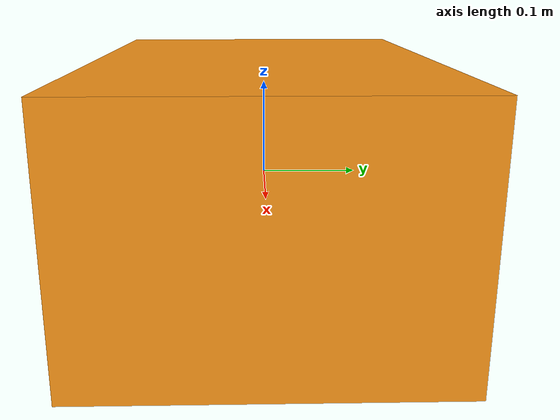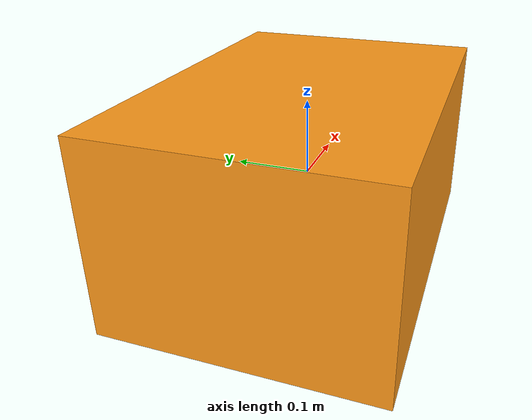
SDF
<?xml version="1.0" ?>
<sdf version="1.9">
  <model name="auv">
    <link name="base_link">
      <pose>0 0 0 0 0 0</pose>
      <inertial>
        <pose>0 0 -0.11 0 0 0</pose>
        <mass>44.6</mass>
        <inertia>
          <ixx>0.6876</ixx>
          <iyy>1.1615</iyy>
          <izz>1.3846</izz>
          <ixy>0</ixy><ixz>0</ixz><iyz>0</iyz>
        </inertia>
      </inertial>
      <collision name="hull_collision">
        <geometry>
          <box>
            <size>0.5 0.35 0.25</size>
          </box>
        </geometry>
      </collision>
      <visual name="hull_visual">
        <geometry>
          <box>
            <size>0.5 0.35 0.25</size>
          </box>
        </geometry>
        <material>
          <ambient>0.9 0.5 0.05 1</ambient>
          <diffuse>1.0 0.6 0.1 1</diffuse>
          <specular>0.3 0.3 0.3 1</specular>
        </material>
      </visual>

      <sensor name="front_camera" type="camera">
        <pose>0.26 0 0 0 0 0</pose>
        <topic>__AUV_NAME__/camera</topic>
        <update_rate>15</update_rate>
        <always_on>1</always_on>
        <visualize>true</visualize>
        <camera>
          <horizontal_fov>1.5708</horizontal_fov>
          <image>
            <width>640</width>
            <height>480</height>
          </image>
          <clip>
            <near>0.05</near>
            <far>50</far>
          </clip>
        </camera>
      </sensor>

      <sensor name="fls_sonar" type="gpu_lidar">
        <pose>0.26 0 -0.04 0 0 0</pose>
        <topic>__AUV_NAME__/sonar</topic>
        <update_rate>10</update_rate>
        <always_on>1</always_on>
        <visualize>false</visualize>
        <lidar>
          <scan>
            <horizontal>
              <samples>64</samples>
              <resolution>1</resolution>
              <min_angle>-1.0472</min_angle>
              <max_angle>1.0472</max_angle>
            </horizontal>
            <vertical>
              <samples>4</samples>
              <resolution>1</resolution>
              <min_angle>-0.1745</min_angle>
              <max_angle>0.1745</max_angle>
            </vertical>
          </scan>
          <range>
            <min>1.0</min>
            <max>40.0</max>
            <resolution>0.05</resolution>
          </range>
        </lidar>
      </sensor>
    </link>

    <link name="prop_surge_left">
      <pose>-0.2 0.13 0 0 0 0</pose>
      <inertial>
        <mass>0.05</mass>
        <inertia><ixx>1e-5</ixx><iyy>1e-5</iyy><izz>1e-5</izz>
                  <ixy>0</ixy><ixz>0</ixz><iyz>0</iyz></inertia>
      </inertial>
      <visual name="prop_surge_left_visual">
        <geometry><cylinder><radius>0.04</radius><length>0.02</length></cylinder></geometry>
        <material><ambient>0.1 0.1 0.1 1</ambient></material>
      </visual>
    </link>
    <joint name="surge_left_joint" type="revolute">
      <parent>base_link</parent>
      <child>prop_surge_left</child>
      <axis>
        <xyz>1 0 0</xyz>
      </axis>
    </joint>

    <link name="prop_surge_right">
      <pose>-0.2 -0.13 0 0 0 0</pose>
      <inertial>
        <mass>0.05</mass>
        <inertia><ixx>1e-5</ixx><iyy>1e-5</iyy><izz>1e-5</izz>
                  <ixy>0</ixy><ixz>0</ixz><iyz>0</iyz></inertia>
      </inertial>
      <visual name="prop_surge_right_visual">
        <geometry><cylinder><radius>0.04</radius><length>0.02</length></cylinder></geometry>
        <material><ambient>0.1 0.1 0.1 1</ambient></material>
      </visual>
    </link>
    <joint name="surge_right_joint" type="revolute">
      <parent>base_link</parent>
      <child>prop_surge_right</child>
      <axis>
        <xyz>1 0 0</xyz>
      </axis>
    </joint>

    <link name="prop_sway">
      <pose>0 0 0.015 0 0 0</pose>
      <inertial>
        <mass>0.05</mass>
        <inertia><ixx>1e-5</ixx><iyy>1e-5</iyy><izz>1e-5</izz>
                  <ixy>0</ixy><ixz>0</ixz><iyz>0</iyz></inertia>
      </inertial>
      <visual name="prop_sway_visual">
        <geometry><cylinder><radius>0.04</radius><length>0.02</length></cylinder></geometry>
        <material><ambient>0.1 0.1 0.1 1</ambient></material>
      </visual>
    </link>
    <joint name="sway_joint" type="revolute">
      <parent>base_link</parent>
      <child>prop_sway</child>
      <axis>
        <xyz>0 1 0</xyz>
      </axis>
    </joint>

    <link name="prop_heave_front">
      <pose>0.15 0 0.04 0 0 0</pose>
      <inertial>
        <mass>0.05</mass>
        <inertia><ixx>1e-5</ixx><iyy>1e-5</iyy><izz>1e-5</izz>
                  <ixy>0</ixy><ixz>0</ixz><iyz>0</iyz></inertia>
      </inertial>
      <visual name="prop_heave_front_visual">
        <geometry><cylinder><radius>0.04</radius><length>0.02</length></cylinder></geometry>
        <material><ambient>0.1 0.1 0.1 1</ambient></material>
      </visual>
    </link>
    <joint name="heave_front_joint" type="revolute">
      <parent>base_link</parent>
      <child>prop_heave_front</child>
      <axis>
        <xyz>0 0 1</xyz>
      </axis>
    </joint>

    <link name="prop_heave_rear">
      <pose>-0.15 0 0.04 0 0 0</pose>
      <inertial>
        <mass>0.05</mass>
        <inertia><ixx>1e-5</ixx><iyy>1e-5</iyy><izz>1e-5</izz>
                  <ixy>0</ixy><ixz>0</ixz><iyz>0</iyz></inertia>
      </inertial>
      <visual name="prop_heave_rear_visual">
        <geometry><cylinder><radius>0.04</radius><length>0.02</length></cylinder></geometry>
        <material><ambient>0.1 0.1 0.1 1</ambient></material>
      </visual>
    </link>
    <joint name="heave_rear_joint" type="revolute">
      <parent>base_link</parent>
      <child>prop_heave_rear</child>
      <axis>
        <xyz>0 0 1</xyz>
      </axis>
    </joint>

    <plugin filename="gz-sim-thruster-system" name="gz::sim::systems::Thruster">
      <joint_name>surge_left_joint</joint_name>
      <thrust_coefficient>0.004422</thrust_coefficient>
      <fluid_density>1000</fluid_density>
      <propeller_diameter>0.1</propeller_diameter>
    </plugin>
    <plugin filename="gz-sim-thruster-system" name="gz::sim::systems::Thruster">
      <joint_name>surge_right_joint</joint_name>
      <thrust_coefficient>0.004422</thrust_coefficient>
      <fluid_density>1000</fluid_density>
      <propeller_diameter>0.1</propeller_diameter>
    </plugin>
    <plugin filename="gz-sim-thruster-system" name="gz::sim::systems::Thruster">
      <joint_name>sway_joint</joint_name>
      <thrust_coefficient>0.004422</thrust_coefficient>
      <fluid_density>1000</fluid_density>
      <propeller_diameter>0.1</propeller_diameter>
    </plugin>
    <plugin filename="gz-sim-thruster-system" name="gz::sim::systems::Thruster">
      <joint_name>heave_front_joint</joint_name>
      <thrust_coefficient>0.004422</thrust_coefficient>
      <fluid_density>1000</fluid_density>
      <propeller_diameter>0.1</propeller_diameter>
    </plugin>
    <plugin filename="gz-sim-thruster-system" name="gz::sim::systems::Thruster">
      <joint_name>heave_rear_joint</joint_name>
      <thrust_coefficient>0.004422</thrust_coefficient>
      <fluid_density>1000</fluid_density>
      <propeller_diameter>0.1</propeller_diameter>
    </plugin>

    <plugin filename="gz-sim-hydrodynamics-system" name="gz::sim::systems::Hydrodynamics">
      <link_name>base_link</link_name>
      <xDotU>-8.0</xDotU>   <yDotV>-12.0</yDotV>  <zDotW>-12.0</zDotW>
      <kDotP>-0.05</kDotP>  <mDotQ>-0.15</mDotQ>  <nDotR>-0.15</nDotR>
      <xUabsU>-40.0</xUabsU> <xU>-8.0</xU>
      <yVabsV>-70.0</yVabsV> <yV>-12.0</yV>
      <zWabsW>-70.0</zWabsW> <zW>-12.0</zW>
      <kPabsP>-0.2</kPabsP>  <kP>-0.08</kP>
      <mQabsQ>-6.0</mQabsQ>  <mQ>-1.5</mQ>
      <nRabsR>-6.0</nRabsR>  <nR>-1.5</nR>
    </plugin>

    <plugin filename="gz-sim-odometry-publisher-system" name="gz::sim::systems::OdometryPublisher">
      <dimensions>3</dimensions>
      <odom_frame>odom</odom_frame>
      <robot_base_frame>base_link</robot_base_frame>
      <odom_publish_frequency>30</odom_publish_frequency>
    </plugin>
  </model>
</sdf>
